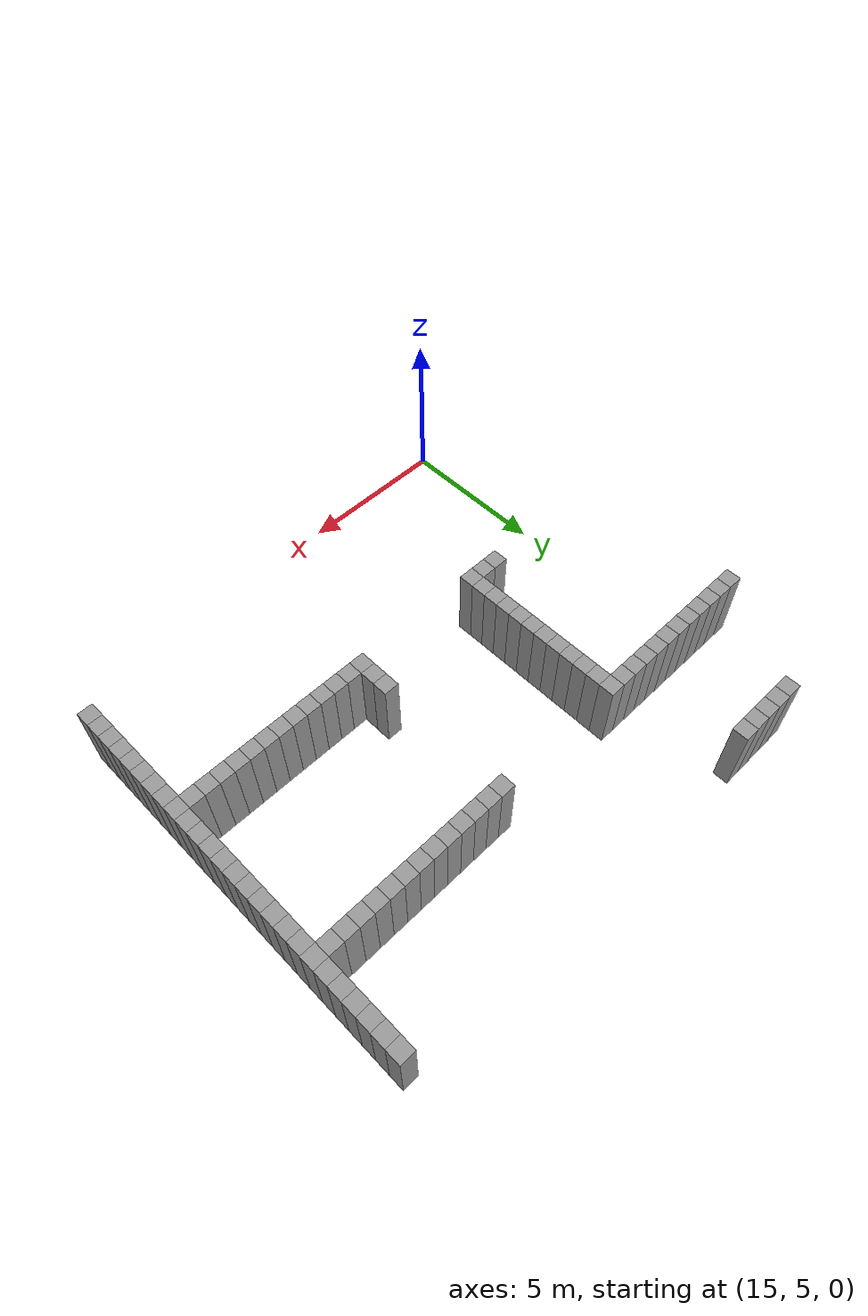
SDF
<sdf version="1.7">
 <model name="image1">
  <pose>-0.375 -1.54 0 0 -0 0</pose>
  <link name="Wall_254">
   <collision name="Wall_254_Collision">
    <geometry><box><size>0.5 0.5 2.5</size></box></geometry>
    <pose>0 0 1.25 0 -0 0</pose>
   </collision>
   <visual name="Wall_254_Visual">
    <pose>0 0 1.25 0 -0 0</pose>
    <geometry><box><size>0.5 0.5 2.5</size></box></geometry>
    <material>
     <script><uri>file://media/materials/scripts/gazebo.material</uri><name>Gazebo/Grey</name></script>
     <ambient>1 1 1 1</ambient>
    </material>
    <meta><layer>0</layer></meta>
   </visual>
   <pose>14.0 18.5 0 0 -0 0</pose>
  </link>
  <link name="Wall_257">
   <collision name="Wall_257_Collision">
    <geometry><box><size>0.5 0.5 2.5</size></box></geometry>
    <pose>0 0 1.25 0 -0 0</pose>
   </collision>
   <visual name="Wall_257_Visual">
    <pose>0 0 1.25 0 -0 0</pose>
    <geometry><box><size>0.5 0.5 2.5</size></box></geometry>
    <material>
     <script><uri>file://media/materials/scripts/gazebo.material</uri><name>Gazebo/Grey</name></script>
     <ambient>1 1 1 1</ambient>
    </material>
    <meta><layer>0</layer></meta>
   </visual>
   <pose>14.5 18.5 0 0 -0 0</pose>
  </link>
  <link name="Wall_260">
   <collision name="Wall_260_Collision">
    <geometry><box><size>0.5 0.5 2.5</size></box></geometry>
    <pose>0 0 1.25 0 -0 0</pose>
   </collision>
   <visual name="Wall_260_Visual">
    <pose>0 0 1.25 0 -0 0</pose>
    <geometry><box><size>0.5 0.5 2.5</size></box></geometry>
    <material>
     <script><uri>file://media/materials/scripts/gazebo.material</uri><name>Gazebo/Grey</name></script>
     <ambient>1 1 1 1</ambient>
    </material>
    <meta><layer>0</layer></meta>
   </visual>
   <pose>15.0 18.5 0 0 -0 0</pose>
  </link>
  <link name="Wall_263">
   <collision name="Wall_263_Collision">
    <geometry><box><size>0.5 0.5 2.5</size></box></geometry>
    <pose>0 0 1.25 0 -0 0</pose>
   </collision>
   <visual name="Wall_263_Visual">
    <pose>0 0 1.25 0 -0 0</pose>
    <geometry><box><size>0.5 0.5 2.5</size></box></geometry>
    <material>
     <script><uri>file://media/materials/scripts/gazebo.material</uri><name>Gazebo/Grey</name></script>
     <ambient>1 1 1 1</ambient>
    </material>
    <meta><layer>0</layer></meta>
   </visual>
   <pose>15.5 18.5 0 0 -0 0</pose>
  </link>
  <link name="Wall_266">
   <collision name="Wall_266_Collision">
    <geometry><box><size>0.5 0.5 2.5</size></box></geometry>
    <pose>0 0 1.25 0 -0 0</pose>
   </collision>
   <visual name="Wall_266_Visual">
    <pose>0 0 1.25 0 -0 0</pose>
    <geometry><box><size>0.5 0.5 2.5</size></box></geometry>
    <material>
     <script><uri>file://media/materials/scripts/gazebo.material</uri><name>Gazebo/Grey</name></script>
     <ambient>1 1 1 1</ambient>
    </material>
    <meta><layer>0</layer></meta>
   </visual>
   <pose>16.0 18.5 0 0 -0 0</pose>
  </link>
  <link name="Wall_267">
   <collision name="Wall_267_Collision">
    <geometry><box><size>0.5 0.5 2.5</size></box></geometry>
    <pose>0 0 1.25 0 -0 0</pose>
   </collision>
   <visual name="Wall_267_Visual">
    <pose>0 0 1.25 0 -0 0</pose>
    <geometry><box><size>0.5 0.5 2.5</size></box></geometry>
    <material>
     <script><uri>file://media/materials/scripts/gazebo.material</uri><name>Gazebo/Grey</name></script>
     <ambient>1 1 1 1</ambient>
    </material>
    <meta><layer>0</layer></meta>
   </visual>
   <pose>16.0 22.0 0 0 -0 0</pose>
  </link>
  <link name="Wall_284">
   <collision name="Wall_284_Collision">
    <geometry><box><size>0.5 0.5 2.5</size></box></geometry>
    <pose>0 0 1.25 0 -0 0</pose>
   </collision>
   <visual name="Wall_284_Visual">
    <pose>0 0 1.25 0 -0 0</pose>
    <geometry><box><size>0.5 0.5 2.5</size></box></geometry>
    <material>
     <script><uri>file://media/materials/scripts/gazebo.material</uri><name>Gazebo/Grey</name></script>
     <ambient>1 1 1 1</ambient>
    </material>
    <meta><layer>0</layer></meta>
   </visual>
   <pose>16.5 18.5 0 0 -0 0</pose>
  </link>
  <link name="Wall_285">
   <collision name="Wall_285_Collision">
    <geometry><box><size>0.5 0.5 2.5</size></box></geometry>
    <pose>0 0 1.25 0 -0 0</pose>
   </collision>
   <visual name="Wall_285_Visual">
    <pose>0 0 1.25 0 -0 0</pose>
    <geometry><box><size>0.5 0.5 2.5</size></box></geometry>
    <material>
     <script><uri>file://media/materials/scripts/gazebo.material</uri><name>Gazebo/Grey</name></script>
     <ambient>1 1 1 1</ambient>
    </material>
    <meta><layer>0</layer></meta>
   </visual>
   <pose>16.5 22.0 0 0 -0 0</pose>
  </link>
  <link name="Wall_288">
   <collision name="Wall_288_Collision">
    <geometry><box><size>0.5 0.5 2.5</size></box></geometry>
    <pose>0 0 1.25 0 -0 0</pose>
   </collision>
   <visual name="Wall_288_Visual">
    <pose>0 0 1.25 0 -0 0</pose>
    <geometry><box><size>0.5 0.5 2.5</size></box></geometry>
    <material>
     <script><uri>file://media/materials/scripts/gazebo.material</uri><name>Gazebo/Grey</name></script>
     <ambient>1 1 1 1</ambient>
    </material>
    <meta><layer>0</layer></meta>
   </visual>
   <pose>17.0 18.5 0 0 -0 0</pose>
  </link>
  <link name="Wall_289">
   <collision name="Wall_289_Collision">
    <geometry><box><size>0.5 0.5 2.5</size></box></geometry>
    <pose>0 0 1.25 0 -0 0</pose>
   </collision>
   <visual name="Wall_289_Visual">
    <pose>0 0 1.25 0 -0 0</pose>
    <geometry><box><size>0.5 0.5 2.5</size></box></geometry>
    <material>
     <script><uri>file://media/materials/scripts/gazebo.material</uri><name>Gazebo/Grey</name></script>
     <ambient>1 1 1 1</ambient>
    </material>
    <meta><layer>0</layer></meta>
   </visual>
   <pose>17.0 22.0 0 0 -0 0</pose>
  </link>
  <link name="Wall_292">
   <collision name="Wall_292_Collision">
    <geometry><box><size>0.5 0.5 2.5</size></box></geometry>
    <pose>0 0 1.25 0 -0 0</pose>
   </collision>
   <visual name="Wall_292_Visual">
    <pose>0 0 1.25 0 -0 0</pose>
    <geometry><box><size>0.5 0.5 2.5</size></box></geometry>
    <material>
     <script><uri>file://media/materials/scripts/gazebo.material</uri><name>Gazebo/Grey</name></script>
     <ambient>1 1 1 1</ambient>
    </material>
    <meta><layer>0</layer></meta>
   </visual>
   <pose>17.5 18.5 0 0 -0 0</pose>
  </link>
  <link name="Wall_293">
   <collision name="Wall_293_Collision">
    <geometry><box><size>0.5 0.5 2.5</size></box></geometry>
    <pose>0 0 1.25 0 -0 0</pose>
   </collision>
   <visual name="Wall_293_Visual">
    <pose>0 0 1.25 0 -0 0</pose>
    <geometry><box><size>0.5 0.5 2.5</size></box></geometry>
    <material>
     <script><uri>file://media/materials/scripts/gazebo.material</uri><name>Gazebo/Grey</name></script>
     <ambient>1 1 1 1</ambient>
    </material>
    <meta><layer>0</layer></meta>
   </visual>
   <pose>17.5 22.0 0 0 -0 0</pose>
  </link>
  <link name="Wall_296">
   <collision name="Wall_296_Collision">
    <geometry><box><size>0.5 0.5 2.5</size></box></geometry>
    <pose>0 0 1.25 0 -0 0</pose>
   </collision>
   <visual name="Wall_296_Visual">
    <pose>0 0 1.25 0 -0 0</pose>
    <geometry><box><size>0.5 0.5 2.5</size></box></geometry>
    <material>
     <script><uri>file://media/materials/scripts/gazebo.material</uri><name>Gazebo/Grey</name></script>
     <ambient>1 1 1 1</ambient>
    </material>
    <meta><layer>0</layer></meta>
   </visual>
   <pose>18.0 18.5 0 0 -0 0</pose>
  </link>
  <link name="Wall_297">
   <collision name="Wall_297_Collision">
    <geometry><box><size>0.5 0.5 2.5</size></box></geometry>
    <pose>0 0 1.25 0 -0 0</pose>
   </collision>
   <visual name="Wall_297_Visual">
    <pose>0 0 1.25 0 -0 0</pose>
    <geometry><box><size>0.5 0.5 2.5</size></box></geometry>
    <material>
     <script><uri>file://media/materials/scripts/gazebo.material</uri><name>Gazebo/Grey</name></script>
     <ambient>1 1 1 1</ambient>
    </material>
    <meta><layer>0</layer></meta>
   </visual>
   <pose>18.0 22.0 0 0 -0 0</pose>
  </link>
  <link name="Wall_318">
   <collision name="Wall_318_Collision">
    <geometry><box><size>0.5 0.5 2.5</size></box></geometry>
    <pose>0 0 1.25 0 -0 0</pose>
   </collision>
   <visual name="Wall_318_Visual">
    <pose>0 0 1.25 0 -0 0</pose>
    <geometry><box><size>0.5 0.5 2.5</size></box></geometry>
    <material>
     <script><uri>file://media/materials/scripts/gazebo.material</uri><name>Gazebo/Grey</name></script>
     <ambient>1 1 1 1</ambient>
    </material>
    <meta><layer>0</layer></meta>
   </visual>
   <pose>18.5 13.0 0 0 -0 0</pose>
  </link>
  <link name="Wall_319">
   <collision name="Wall_319_Collision">
    <geometry><box><size>0.5 0.5 2.5</size></box></geometry>
    <pose>0 0 1.25 0 -0 0</pose>
   </collision>
   <visual name="Wall_319_Visual">
    <pose>0 0 1.25 0 -0 0</pose>
    <geometry><box><size>0.5 0.5 2.5</size></box></geometry>
    <material>
     <script><uri>file://media/materials/scripts/gazebo.material</uri><name>Gazebo/Grey</name></script>
     <ambient>1 1 1 1</ambient>
    </material>
    <meta><layer>0</layer></meta>
   </visual>
   <pose>18.5 18.5 0 0 -0 0</pose>
  </link>
  <link name="Wall_323">
   <collision name="Wall_323_Collision">
    <geometry><box><size>0.5 0.5 2.5</size></box></geometry>
    <pose>0 0 1.25 0 -0 0</pose>
   </collision>
   <visual name="Wall_323_Visual">
    <pose>0 0 1.25 0 -0 0</pose>
    <geometry><box><size>0.5 0.5 2.5</size></box></geometry>
    <material>
     <script><uri>file://media/materials/scripts/gazebo.material</uri><name>Gazebo/Grey</name></script>
     <ambient>1 1 1 1</ambient>
    </material>
    <meta><layer>0</layer></meta>
   </visual>
   <pose>19.0 13.0 0 0 -0 0</pose>
  </link>
  <link name="Wall_324">
   <collision name="Wall_324_Collision">
    <geometry><box><size>0.5 0.5 2.5</size></box></geometry>
    <pose>0 0 1.25 0 -0 0</pose>
   </collision>
   <visual name="Wall_324_Visual">
    <pose>0 0 1.25 0 -0 0</pose>
    <geometry><box><size>0.5 0.5 2.5</size></box></geometry>
    <material>
     <script><uri>file://media/materials/scripts/gazebo.material</uri><name>Gazebo/Grey</name></script>
     <ambient>1 1 1 1</ambient>
    </material>
    <meta><layer>0</layer></meta>
   </visual>
   <pose>19.0 18.5 0 0 -0 0</pose>
  </link>
  <link name="Wall_328">
   <collision name="Wall_328_Collision">
    <geometry><box><size>0.5 0.5 2.5</size></box></geometry>
    <pose>0 0 1.25 0 -0 0</pose>
   </collision>
   <visual name="Wall_328_Visual">
    <pose>0 0 1.25 0 -0 0</pose>
    <geometry><box><size>0.5 0.5 2.5</size></box></geometry>
    <material>
     <script><uri>file://media/materials/scripts/gazebo.material</uri><name>Gazebo/Grey</name></script>
     <ambient>1 1 1 1</ambient>
    </material>
    <meta><layer>0</layer></meta>
   </visual>
   <pose>19.5 13.0 0 0 -0 0</pose>
  </link>
  <link name="Wall_329">
   <collision name="Wall_329_Collision">
    <geometry><box><size>0.5 0.5 2.5</size></box></geometry>
    <pose>0 0 1.25 0 -0 0</pose>
   </collision>
   <visual name="Wall_329_Visual">
    <pose>0 0 1.25 0 -0 0</pose>
    <geometry><box><size>0.5 0.5 2.5</size></box></geometry>
    <material>
     <script><uri>file://media/materials/scripts/gazebo.material</uri><name>Gazebo/Grey</name></script>
     <ambient>1 1 1 1</ambient>
    </material>
    <meta><layer>0</layer></meta>
   </visual>
   <pose>19.5 13.5 0 0 -0 0</pose>
  </link>
  <link name="Wall_330">
   <collision name="Wall_330_Collision">
    <geometry><box><size>0.5 0.5 2.5</size></box></geometry>
    <pose>0 0 1.25 0 -0 0</pose>
   </collision>
   <visual name="Wall_330_Visual">
    <pose>0 0 1.25 0 -0 0</pose>
    <geometry><box><size>0.5 0.5 2.5</size></box></geometry>
    <material>
     <script><uri>file://media/materials/scripts/gazebo.material</uri><name>Gazebo/Grey</name></script>
     <ambient>1 1 1 1</ambient>
    </material>
    <meta><layer>0</layer></meta>
   </visual>
   <pose>19.5 14.0 0 0 -0 0</pose>
  </link>
  <link name="Wall_331">
   <collision name="Wall_331_Collision">
    <geometry><box><size>0.5 0.5 2.5</size></box></geometry>
    <pose>0 0 1.25 0 -0 0</pose>
   </collision>
   <visual name="Wall_331_Visual">
    <pose>0 0 1.25 0 -0 0</pose>
    <geometry><box><size>0.5 0.5 2.5</size></box></geometry>
    <material>
     <script><uri>file://media/materials/scripts/gazebo.material</uri><name>Gazebo/Grey</name></script>
     <ambient>1 1 1 1</ambient>
    </material>
    <meta><layer>0</layer></meta>
   </visual>
   <pose>19.5 14.5 0 0 -0 0</pose>
  </link>
  <link name="Wall_332">
   <collision name="Wall_332_Collision">
    <geometry><box><size>0.5 0.5 2.5</size></box></geometry>
    <pose>0 0 1.25 0 -0 0</pose>
   </collision>
   <visual name="Wall_332_Visual">
    <pose>0 0 1.25 0 -0 0</pose>
    <geometry><box><size>0.5 0.5 2.5</size></box></geometry>
    <material>
     <script><uri>file://media/materials/scripts/gazebo.material</uri><name>Gazebo/Grey</name></script>
     <ambient>1 1 1 1</ambient>
    </material>
    <meta><layer>0</layer></meta>
   </visual>
   <pose>19.5 15.0 0 0 -0 0</pose>
  </link>
  <link name="Wall_333">
   <collision name="Wall_333_Collision">
    <geometry><box><size>0.5 0.5 2.5</size></box></geometry>
    <pose>0 0 1.25 0 -0 0</pose>
   </collision>
   <visual name="Wall_333_Visual">
    <pose>0 0 1.25 0 -0 0</pose>
    <geometry><box><size>0.5 0.5 2.5</size></box></geometry>
    <material>
     <script><uri>file://media/materials/scripts/gazebo.material</uri><name>Gazebo/Grey</name></script>
     <ambient>1 1 1 1</ambient>
    </material>
    <meta><layer>0</layer></meta>
   </visual>
   <pose>19.5 15.5 0 0 -0 0</pose>
  </link>
  <link name="Wall_334">
   <collision name="Wall_334_Collision">
    <geometry><box><size>0.5 0.5 2.5</size></box></geometry>
    <pose>0 0 1.25 0 -0 0</pose>
   </collision>
   <visual name="Wall_334_Visual">
    <pose>0 0 1.25 0 -0 0</pose>
    <geometry><box><size>0.5 0.5 2.5</size></box></geometry>
    <material>
     <script><uri>file://media/materials/scripts/gazebo.material</uri><name>Gazebo/Grey</name></script>
     <ambient>1 1 1 1</ambient>
    </material>
    <meta><layer>0</layer></meta>
   </visual>
   <pose>19.5 16.0 0 0 -0 0</pose>
  </link>
  <link name="Wall_335">
   <collision name="Wall_335_Collision">
    <geometry><box><size>0.5 0.5 2.5</size></box></geometry>
    <pose>0 0 1.25 0 -0 0</pose>
   </collision>
   <visual name="Wall_335_Visual">
    <pose>0 0 1.25 0 -0 0</pose>
    <geometry><box><size>0.5 0.5 2.5</size></box></geometry>
    <material>
     <script><uri>file://media/materials/scripts/gazebo.material</uri><name>Gazebo/Grey</name></script>
     <ambient>1 1 1 1</ambient>
    </material>
    <meta><layer>0</layer></meta>
   </visual>
   <pose>19.5 16.5 0 0 -0 0</pose>
  </link>
  <link name="Wall_336">
   <collision name="Wall_336_Collision">
    <geometry><box><size>0.5 0.5 2.5</size></box></geometry>
    <pose>0 0 1.25 0 -0 0</pose>
   </collision>
   <visual name="Wall_336_Visual">
    <pose>0 0 1.25 0 -0 0</pose>
    <geometry><box><size>0.5 0.5 2.5</size></box></geometry>
    <material>
     <script><uri>file://media/materials/scripts/gazebo.material</uri><name>Gazebo/Grey</name></script>
     <ambient>1 1 1 1</ambient>
    </material>
    <meta><layer>0</layer></meta>
   </visual>
   <pose>19.5 17.0 0 0 -0 0</pose>
  </link>
  <link name="Wall_337">
   <collision name="Wall_337_Collision">
    <geometry><box><size>0.5 0.5 2.5</size></box></geometry>
    <pose>0 0 1.25 0 -0 0</pose>
   </collision>
   <visual name="Wall_337_Visual">
    <pose>0 0 1.25 0 -0 0</pose>
    <geometry><box><size>0.5 0.5 2.5</size></box></geometry>
    <material>
     <script><uri>file://media/materials/scripts/gazebo.material</uri><name>Gazebo/Grey</name></script>
     <ambient>1 1 1 1</ambient>
    </material>
    <meta><layer>0</layer></meta>
   </visual>
   <pose>19.5 17.5 0 0 -0 0</pose>
  </link>
  <link name="Wall_338">
   <collision name="Wall_338_Collision">
    <geometry><box><size>0.5 0.5 2.5</size></box></geometry>
    <pose>0 0 1.25 0 -0 0</pose>
   </collision>
   <visual name="Wall_338_Visual">
    <pose>0 0 1.25 0 -0 0</pose>
    <geometry><box><size>0.5 0.5 2.5</size></box></geometry>
    <material>
     <script><uri>file://media/materials/scripts/gazebo.material</uri><name>Gazebo/Grey</name></script>
     <ambient>1 1 1 1</ambient>
    </material>
    <meta><layer>0</layer></meta>
   </visual>
   <pose>19.5 18.0 0 0 -0 0</pose>
  </link>
  <link name="Wall_339">
   <collision name="Wall_339_Collision">
    <geometry><box><size>0.5 0.5 2.5</size></box></geometry>
    <pose>0 0 1.25 0 -0 0</pose>
   </collision>
   <visual name="Wall_339_Visual">
    <pose>0 0 1.25 0 -0 0</pose>
    <geometry><box><size>0.5 0.5 2.5</size></box></geometry>
    <material>
     <script><uri>file://media/materials/scripts/gazebo.material</uri><name>Gazebo/Grey</name></script>
     <ambient>1 1 1 1</ambient>
    </material>
    <meta><layer>0</layer></meta>
   </visual>
   <pose>19.5 18.5 0 0 -0 0</pose>
  </link>
  <link name="Wall_364">
   <collision name="Wall_364_Collision">
    <geometry><box><size>0.5 0.5 2.5</size></box></geometry>
    <pose>0 0 1.25 0 -0 0</pose>
   </collision>
   <visual name="Wall_364_Visual">
    <pose>0 0 1.25 0 -0 0</pose>
    <geometry><box><size>0.5 0.5 2.5</size></box></geometry>
    <material>
     <script><uri>file://media/materials/scripts/gazebo.material</uri><name>Gazebo/Grey</name></script>
     <ambient>1 1 1 1</ambient>
    </material>
    <meta><layer>0</layer></meta>
   </visual>
   <pose>24.0 13.0 0 0 -0 0</pose>
  </link>
  <link name="Wall_365">
   <collision name="Wall_365_Collision">
    <geometry><box><size>0.5 0.5 2.5</size></box></geometry>
    <pose>0 0 1.25 0 -0 0</pose>
   </collision>
   <visual name="Wall_365_Visual">
    <pose>0 0 1.25 0 -0 0</pose>
    <geometry><box><size>0.5 0.5 2.5</size></box></geometry>
    <material>
     <script><uri>file://media/materials/scripts/gazebo.material</uri><name>Gazebo/Grey</name></script>
     <ambient>1 1 1 1</ambient>
    </material>
    <meta><layer>0</layer></meta>
   </visual>
   <pose>24.0 13.5 0 0 -0 0</pose>
  </link>
  <link name="Wall_366">
   <collision name="Wall_366_Collision">
    <geometry><box><size>0.5 0.5 2.5</size></box></geometry>
    <pose>0 0 1.25 0 -0 0</pose>
   </collision>
   <visual name="Wall_366_Visual">
    <pose>0 0 1.25 0 -0 0</pose>
    <geometry><box><size>0.5 0.5 2.5</size></box></geometry>
    <material>
     <script><uri>file://media/materials/scripts/gazebo.material</uri><name>Gazebo/Grey</name></script>
     <ambient>1 1 1 1</ambient>
    </material>
    <meta><layer>0</layer></meta>
   </visual>
   <pose>24.0 14.0 0 0 -0 0</pose>
  </link>
  <link name="Wall_367">
   <collision name="Wall_367_Collision">
    <geometry><box><size>0.5 0.5 2.5</size></box></geometry>
    <pose>0 0 1.25 0 -0 0</pose>
   </collision>
   <visual name="Wall_367_Visual">
    <pose>0 0 1.25 0 -0 0</pose>
    <geometry><box><size>0.5 0.5 2.5</size></box></geometry>
    <material>
     <script><uri>file://media/materials/scripts/gazebo.material</uri><name>Gazebo/Grey</name></script>
     <ambient>1 1 1 1</ambient>
    </material>
    <meta><layer>0</layer></meta>
   </visual>
   <pose>24.0 18.5 0 0 -0 0</pose>
  </link>
  <link name="Wall_372">
   <collision name="Wall_372_Collision">
    <geometry><box><size>0.5 0.5 2.5</size></box></geometry>
    <pose>0 0 1.25 0 -0 0</pose>
   </collision>
   <visual name="Wall_372_Visual">
    <pose>0 0 1.25 0 -0 0</pose>
    <geometry><box><size>0.5 0.5 2.5</size></box></geometry>
    <material>
     <script><uri>file://media/materials/scripts/gazebo.material</uri><name>Gazebo/Grey</name></script>
     <ambient>1 1 1 1</ambient>
    </material>
    <meta><layer>0</layer></meta>
   </visual>
   <pose>24.5 13.0 0 0 -0 0</pose>
  </link>
  <link name="Wall_373">
   <collision name="Wall_373_Collision">
    <geometry><box><size>0.5 0.5 2.5</size></box></geometry>
    <pose>0 0 1.25 0 -0 0</pose>
   </collision>
   <visual name="Wall_373_Visual">
    <pose>0 0 1.25 0 -0 0</pose>
    <geometry><box><size>0.5 0.5 2.5</size></box></geometry>
    <material>
     <script><uri>file://media/materials/scripts/gazebo.material</uri><name>Gazebo/Grey</name></script>
     <ambient>1 1 1 1</ambient>
    </material>
    <meta><layer>0</layer></meta>
   </visual>
   <pose>24.5 18.5 0 0 -0 0</pose>
  </link>
  <link name="Wall_392">
   <collision name="Wall_392_Collision">
    <geometry><box><size>0.5 0.5 2.5</size></box></geometry>
    <pose>0 0 1.25 0 -0 0</pose>
   </collision>
   <visual name="Wall_392_Visual">
    <pose>0 0 1.25 0 -0 0</pose>
    <geometry><box><size>0.5 0.5 2.5</size></box></geometry>
    <material>
     <script><uri>file://media/materials/scripts/gazebo.material</uri><name>Gazebo/Grey</name></script>
     <ambient>1 1 1 1</ambient>
    </material>
    <meta><layer>0</layer></meta>
   </visual>
   <pose>25.0 13.0 0 0 -0 0</pose>
  </link>
  <link name="Wall_393">
   <collision name="Wall_393_Collision">
    <geometry><box><size>0.5 0.5 2.5</size></box></geometry>
    <pose>0 0 1.25 0 -0 0</pose>
   </collision>
   <visual name="Wall_393_Visual">
    <pose>0 0 1.25 0 -0 0</pose>
    <geometry><box><size>0.5 0.5 2.5</size></box></geometry>
    <material>
     <script><uri>file://media/materials/scripts/gazebo.material</uri><name>Gazebo/Grey</name></script>
     <ambient>1 1 1 1</ambient>
    </material>
    <meta><layer>0</layer></meta>
   </visual>
   <pose>25.0 18.5 0 0 -0 0</pose>
  </link>
  <link name="Wall_398">
   <collision name="Wall_398_Collision">
    <geometry><box><size>0.5 0.5 2.5</size></box></geometry>
    <pose>0 0 1.25 0 -0 0</pose>
   </collision>
   <visual name="Wall_398_Visual">
    <pose>0 0 1.25 0 -0 0</pose>
    <geometry><box><size>0.5 0.5 2.5</size></box></geometry>
    <material>
     <script><uri>file://media/materials/scripts/gazebo.material</uri><name>Gazebo/Grey</name></script>
     <ambient>1 1 1 1</ambient>
    </material>
    <meta><layer>0</layer></meta>
   </visual>
   <pose>25.5 13.0 0 0 -0 0</pose>
  </link>
  <link name="Wall_399">
   <collision name="Wall_399_Collision">
    <geometry><box><size>0.5 0.5 2.5</size></box></geometry>
    <pose>0 0 1.25 0 -0 0</pose>
   </collision>
   <visual name="Wall_399_Visual">
    <pose>0 0 1.25 0 -0 0</pose>
    <geometry><box><size>0.5 0.5 2.5</size></box></geometry>
    <material>
     <script><uri>file://media/materials/scripts/gazebo.material</uri><name>Gazebo/Grey</name></script>
     <ambient>1 1 1 1</ambient>
    </material>
    <meta><layer>0</layer></meta>
   </visual>
   <pose>25.5 18.5 0 0 -0 0</pose>
  </link>
  <link name="Wall_404">
   <collision name="Wall_404_Collision">
    <geometry><box><size>0.5 0.5 2.5</size></box></geometry>
    <pose>0 0 1.25 0 -0 0</pose>
   </collision>
   <visual name="Wall_404_Visual">
    <pose>0 0 1.25 0 -0 0</pose>
    <geometry><box><size>0.5 0.5 2.5</size></box></geometry>
    <material>
     <script><uri>file://media/materials/scripts/gazebo.material</uri><name>Gazebo/Grey</name></script>
     <ambient>1 1 1 1</ambient>
    </material>
    <meta><layer>0</layer></meta>
   </visual>
   <pose>26.0 13.0 0 0 -0 0</pose>
  </link>
  <link name="Wall_405">
   <collision name="Wall_405_Collision">
    <geometry><box><size>0.5 0.5 2.5</size></box></geometry>
    <pose>0 0 1.25 0 -0 0</pose>
   </collision>
   <visual name="Wall_405_Visual">
    <pose>0 0 1.25 0 -0 0</pose>
    <geometry><box><size>0.5 0.5 2.5</size></box></geometry>
    <material>
     <script><uri>file://media/materials/scripts/gazebo.material</uri><name>Gazebo/Grey</name></script>
     <ambient>1 1 1 1</ambient>
    </material>
    <meta><layer>0</layer></meta>
   </visual>
   <pose>26.0 18.5 0 0 -0 0</pose>
  </link>
  <link name="Wall_409">
   <collision name="Wall_409_Collision">
    <geometry><box><size>0.5 0.5 2.5</size></box></geometry>
    <pose>0 0 1.25 0 -0 0</pose>
   </collision>
   <visual name="Wall_409_Visual">
    <pose>0 0 1.25 0 -0 0</pose>
    <geometry><box><size>0.5 0.5 2.5</size></box></geometry>
    <material>
     <script><uri>file://media/materials/scripts/gazebo.material</uri><name>Gazebo/Grey</name></script>
     <ambient>1 1 1 1</ambient>
    </material>
    <meta><layer>0</layer></meta>
   </visual>
   <pose>26.5 13.0 0 0 -0 0</pose>
  </link>
  <link name="Wall_410">
   <collision name="Wall_410_Collision">
    <geometry><box><size>0.5 0.5 2.5</size></box></geometry>
    <pose>0 0 1.25 0 -0 0</pose>
   </collision>
   <visual name="Wall_410_Visual">
    <pose>0 0 1.25 0 -0 0</pose>
    <geometry><box><size>0.5 0.5 2.5</size></box></geometry>
    <material>
     <script><uri>file://media/materials/scripts/gazebo.material</uri><name>Gazebo/Grey</name></script>
     <ambient>1 1 1 1</ambient>
    </material>
    <meta><layer>0</layer></meta>
   </visual>
   <pose>26.5 18.5 0 0 -0 0</pose>
  </link>
  <link name="Wall_414">
   <collision name="Wall_414_Collision">
    <geometry><box><size>0.5 0.5 2.5</size></box></geometry>
    <pose>0 0 1.25 0 -0 0</pose>
   </collision>
   <visual name="Wall_414_Visual">
    <pose>0 0 1.25 0 -0 0</pose>
    <geometry><box><size>0.5 0.5 2.5</size></box></geometry>
    <material>
     <script><uri>file://media/materials/scripts/gazebo.material</uri><name>Gazebo/Grey</name></script>
     <ambient>1 1 1 1</ambient>
    </material>
    <meta><layer>0</layer></meta>
   </visual>
   <pose>27.0 13.0 0 0 -0 0</pose>
  </link>
  <link name="Wall_415">
   <collision name="Wall_415_Collision">
    <geometry><box><size>0.5 0.5 2.5</size></box></geometry>
    <pose>0 0 1.25 0 -0 0</pose>
   </collision>
   <visual name="Wall_415_Visual">
    <pose>0 0 1.25 0 -0 0</pose>
    <geometry><box><size>0.5 0.5 2.5</size></box></geometry>
    <material>
     <script><uri>file://media/materials/scripts/gazebo.material</uri><name>Gazebo/Grey</name></script>
     <ambient>1 1 1 1</ambient>
    </material>
    <meta><layer>0</layer></meta>
   </visual>
   <pose>27.0 18.5 0 0 -0 0</pose>
  </link>
  <link name="Wall_419">
   <collision name="Wall_419_Collision">
    <geometry><box><size>0.5 0.5 2.5</size></box></geometry>
    <pose>0 0 1.25 0 -0 0</pose>
   </collision>
   <visual name="Wall_419_Visual">
    <pose>0 0 1.25 0 -0 0</pose>
    <geometry><box><size>0.5 0.5 2.5</size></box></geometry>
    <material>
     <script><uri>file://media/materials/scripts/gazebo.material</uri><name>Gazebo/Grey</name></script>
     <ambient>1 1 1 1</ambient>
    </material>
    <meta><layer>0</layer></meta>
   </visual>
   <pose>27.5 13.0 0 0 -0 0</pose>
  </link>
  <link name="Wall_420">
   <collision name="Wall_420_Collision">
    <geometry><box><size>0.5 0.5 2.5</size></box></geometry>
    <pose>0 0 1.25 0 -0 0</pose>
   </collision>
   <visual name="Wall_420_Visual">
    <pose>0 0 1.25 0 -0 0</pose>
    <geometry><box><size>0.5 0.5 2.5</size></box></geometry>
    <material>
     <script><uri>file://media/materials/scripts/gazebo.material</uri><name>Gazebo/Grey</name></script>
     <ambient>1 1 1 1</ambient>
    </material>
    <meta><layer>0</layer></meta>
   </visual>
   <pose>27.5 18.5 0 0 -0 0</pose>
  </link>
  <link name="Wall_424">
   <collision name="Wall_424_Collision">
    <geometry><box><size>0.5 0.5 2.5</size></box></geometry>
    <pose>0 0 1.25 0 -0 0</pose>
   </collision>
   <visual name="Wall_424_Visual">
    <pose>0 0 1.25 0 -0 0</pose>
    <geometry><box><size>0.5 0.5 2.5</size></box></geometry>
    <material>
     <script><uri>file://media/materials/scripts/gazebo.material</uri><name>Gazebo/Grey</name></script>
     <ambient>1 1 1 1</ambient>
    </material>
    <meta><layer>0</layer></meta>
   </visual>
   <pose>28.0 13.0 0 0 -0 0</pose>
  </link>
  <link name="Wall_425">
   <collision name="Wall_425_Collision">
    <geometry><box><size>0.5 0.5 2.5</size></box></geometry>
    <pose>0 0 1.25 0 -0 0</pose>
   </collision>
   <visual name="Wall_425_Visual">
    <pose>0 0 1.25 0 -0 0</pose>
    <geometry><box><size>0.5 0.5 2.5</size></box></geometry>
    <material>
     <script><uri>file://media/materials/scripts/gazebo.material</uri><name>Gazebo/Grey</name></script>
     <ambient>1 1 1 1</ambient>
    </material>
    <meta><layer>0</layer></meta>
   </visual>
   <pose>28.0 18.5 0 0 -0 0</pose>
  </link>
  <link name="Wall_429">
   <collision name="Wall_429_Collision">
    <geometry><box><size>0.5 0.5 2.5</size></box></geometry>
    <pose>0 0 1.25 0 -0 0</pose>
   </collision>
   <visual name="Wall_429_Visual">
    <pose>0 0 1.25 0 -0 0</pose>
    <geometry><box><size>0.5 0.5 2.5</size></box></geometry>
    <material>
     <script><uri>file://media/materials/scripts/gazebo.material</uri><name>Gazebo/Grey</name></script>
     <ambient>1 1 1 1</ambient>
    </material>
    <meta><layer>0</layer></meta>
   </visual>
   <pose>28.5 13.0 0 0 -0 0</pose>
  </link>
  <link name="Wall_430">
   <collision name="Wall_430_Collision">
    <geometry><box><size>0.5 0.5 2.5</size></box></geometry>
    <pose>0 0 1.25 0 -0 0</pose>
   </collision>
   <visual name="Wall_430_Visual">
    <pose>0 0 1.25 0 -0 0</pose>
    <geometry><box><size>0.5 0.5 2.5</size></box></geometry>
    <material>
     <script><uri>file://media/materials/scripts/gazebo.material</uri><name>Gazebo/Grey</name></script>
     <ambient>1 1 1 1</ambient>
    </material>
    <meta><layer>0</layer></meta>
   </visual>
   <pose>28.5 18.5 0 0 -0 0</pose>
  </link>
  <link name="Wall_434">
   <collision name="Wall_434_Collision">
    <geometry><box><size>0.5 0.5 2.5</size></box></geometry>
    <pose>0 0 1.25 0 -0 0</pose>
   </collision>
   <visual name="Wall_434_Visual">
    <pose>0 0 1.25 0 -0 0</pose>
    <geometry><box><size>0.5 0.5 2.5</size></box></geometry>
    <material>
     <script><uri>file://media/materials/scripts/gazebo.material</uri><name>Gazebo/Grey</name></script>
     <ambient>1 1 1 1</ambient>
    </material>
    <meta><layer>0</layer></meta>
   </visual>
   <pose>29.0 13.0 0 0 -0 0</pose>
  </link>
  <link name="Wall_435">
   <collision name="Wall_435_Collision">
    <geometry><box><size>0.5 0.5 2.5</size></box></geometry>
    <pose>0 0 1.25 0 -0 0</pose>
   </collision>
   <visual name="Wall_435_Visual">
    <pose>0 0 1.25 0 -0 0</pose>
    <geometry><box><size>0.5 0.5 2.5</size></box></geometry>
    <material>
     <script><uri>file://media/materials/scripts/gazebo.material</uri><name>Gazebo/Grey</name></script>
     <ambient>1 1 1 1</ambient>
    </material>
    <meta><layer>0</layer></meta>
   </visual>
   <pose>29.0 18.5 0 0 -0 0</pose>
  </link>
  <link name="Wall_439">
   <collision name="Wall_439_Collision">
    <geometry><box><size>0.5 0.5 2.5</size></box></geometry>
    <pose>0 0 1.25 0 -0 0</pose>
   </collision>
   <visual name="Wall_439_Visual">
    <pose>0 0 1.25 0 -0 0</pose>
    <geometry><box><size>0.5 0.5 2.5</size></box></geometry>
    <material>
     <script><uri>file://media/materials/scripts/gazebo.material</uri><name>Gazebo/Grey</name></script>
     <ambient>1 1 1 1</ambient>
    </material>
    <meta><layer>0</layer></meta>
   </visual>
   <pose>29.5 13.0 0 0 -0 0</pose>
  </link>
  <link name="Wall_440">
   <collision name="Wall_440_Collision">
    <geometry><box><size>0.5 0.5 2.5</size></box></geometry>
    <pose>0 0 1.25 0 -0 0</pose>
   </collision>
   <visual name="Wall_440_Visual">
    <pose>0 0 1.25 0 -0 0</pose>
    <geometry><box><size>0.5 0.5 2.5</size></box></geometry>
    <material>
     <script><uri>file://media/materials/scripts/gazebo.material</uri><name>Gazebo/Grey</name></script>
     <ambient>1 1 1 1</ambient>
    </material>
    <meta><layer>0</layer></meta>
   </visual>
   <pose>29.5 18.5 0 0 -0 0</pose>
  </link>
  <link name="Wall_444">
   <collision name="Wall_444_Collision">
    <geometry><box><size>0.5 0.5 2.5</size></box></geometry>
    <pose>0 0 1.25 0 -0 0</pose>
   </collision>
   <visual name="Wall_444_Visual">
    <pose>0 0 1.25 0 -0 0</pose>
    <geometry><box><size>0.5 0.5 2.5</size></box></geometry>
    <material>
     <script><uri>file://media/materials/scripts/gazebo.material</uri><name>Gazebo/Grey</name></script>
     <ambient>1 1 1 1</ambient>
    </material>
    <meta><layer>0</layer></meta>
   </visual>
   <pose>30.0 13.0 0 0 -0 0</pose>
  </link>
  <link name="Wall_445">
   <collision name="Wall_445_Collision">
    <geometry><box><size>0.5 0.5 2.5</size></box></geometry>
    <pose>0 0 1.25 0 -0 0</pose>
   </collision>
   <visual name="Wall_445_Visual">
    <pose>0 0 1.25 0 -0 0</pose>
    <geometry><box><size>0.5 0.5 2.5</size></box></geometry>
    <material>
     <script><uri>file://media/materials/scripts/gazebo.material</uri><name>Gazebo/Grey</name></script>
     <ambient>1 1 1 1</ambient>
    </material>
    <meta><layer>0</layer></meta>
   </visual>
   <pose>30.0 18.5 0 0 -0 0</pose>
  </link>
  <link name="Wall_466">
   <collision name="Wall_466_Collision">
    <geometry><box><size>0.5 0.5 2.5</size></box></geometry>
    <pose>0 0 1.25 0 -0 0</pose>
   </collision>
   <visual name="Wall_466_Visual">
    <pose>0 0 1.25 0 -0 0</pose>
    <geometry><box><size>0.5 0.5 2.5</size></box></geometry>
    <material>
     <script><uri>file://media/materials/scripts/gazebo.material</uri><name>Gazebo/Grey</name></script>
     <ambient>1 1 1 1</ambient>
    </material>
    <meta><layer>0</layer></meta>
   </visual>
   <pose>30.5 9.0 0 0 -0 0</pose>
  </link>
  <link name="Wall_467">
   <collision name="Wall_467_Collision">
    <geometry><box><size>0.5 0.5 2.5</size></box></geometry>
    <pose>0 0 1.25 0 -0 0</pose>
   </collision>
   <visual name="Wall_467_Visual">
    <pose>0 0 1.25 0 -0 0</pose>
    <geometry><box><size>0.5 0.5 2.5</size></box></geometry>
    <material>
     <script><uri>file://media/materials/scripts/gazebo.material</uri><name>Gazebo/Grey</name></script>
     <ambient>1 1 1 1</ambient>
    </material>
    <meta><layer>0</layer></meta>
   </visual>
   <pose>30.5 9.5 0 0 -0 0</pose>
  </link>
  <link name="Wall_468">
   <collision name="Wall_468_Collision">
    <geometry><box><size>0.5 0.5 2.5</size></box></geometry>
    <pose>0 0 1.25 0 -0 0</pose>
   </collision>
   <visual name="Wall_468_Visual">
    <pose>0 0 1.25 0 -0 0</pose>
    <geometry><box><size>0.5 0.5 2.5</size></box></geometry>
    <material>
     <script><uri>file://media/materials/scripts/gazebo.material</uri><name>Gazebo/Grey</name></script>
     <ambient>1 1 1 1</ambient>
    </material>
    <meta><layer>0</layer></meta>
   </visual>
   <pose>30.5 10.0 0 0 -0 0</pose>
  </link>
  <link name="Wall_469">
   <collision name="Wall_469_Collision">
    <geometry><box><size>0.5 0.5 2.5</size></box></geometry>
    <pose>0 0 1.25 0 -0 0</pose>
   </collision>
   <visual name="Wall_469_Visual">
    <pose>0 0 1.25 0 -0 0</pose>
    <geometry><box><size>0.5 0.5 2.5</size></box></geometry>
    <material>
     <script><uri>file://media/materials/scripts/gazebo.material</uri><name>Gazebo/Grey</name></script>
     <ambient>1 1 1 1</ambient>
    </material>
    <meta><layer>0</layer></meta>
   </visual>
   <pose>30.5 10.5 0 0 -0 0</pose>
  </link>
  <link name="Wall_470">
   <collision name="Wall_470_Collision">
    <geometry><box><size>0.5 0.5 2.5</size></box></geometry>
    <pose>0 0 1.25 0 -0 0</pose>
   </collision>
   <visual name="Wall_470_Visual">
    <pose>0 0 1.25 0 -0 0</pose>
    <geometry><box><size>0.5 0.5 2.5</size></box></geometry>
    <material>
     <script><uri>file://media/materials/scripts/gazebo.material</uri><name>Gazebo/Grey</name></script>
     <ambient>1 1 1 1</ambient>
    </material>
    <meta><layer>0</layer></meta>
   </visual>
   <pose>30.5 11.0 0 0 -0 0</pose>
  </link>
  <link name="Wall_471">
   <collision name="Wall_471_Collision">
    <geometry><box><size>0.5 0.5 2.5</size></box></geometry>
    <pose>0 0 1.25 0 -0 0</pose>
   </collision>
   <visual name="Wall_471_Visual">
    <pose>0 0 1.25 0 -0 0</pose>
    <geometry><box><size>0.5 0.5 2.5</size></box></geometry>
    <material>
     <script><uri>file://media/materials/scripts/gazebo.material</uri><name>Gazebo/Grey</name></script>
     <ambient>1 1 1 1</ambient>
    </material>
    <meta><layer>0</layer></meta>
   </visual>
   <pose>30.5 11.5 0 0 -0 0</pose>
  </link>
  <link name="Wall_472">
   <collision name="Wall_472_Collision">
    <geometry><box><size>0.5 0.5 2.5</size></box></geometry>
    <pose>0 0 1.25 0 -0 0</pose>
   </collision>
   <visual name="Wall_472_Visual">
    <pose>0 0 1.25 0 -0 0</pose>
    <geometry><box><size>0.5 0.5 2.5</size></box></geometry>
    <material>
     <script><uri>file://media/materials/scripts/gazebo.material</uri><name>Gazebo/Grey</name></script>
     <ambient>1 1 1 1</ambient>
    </material>
    <meta><layer>0</layer></meta>
   </visual>
   <pose>30.5 12.0 0 0 -0 0</pose>
  </link>
  <link name="Wall_473">
   <collision name="Wall_473_Collision">
    <geometry><box><size>0.5 0.5 2.5</size></box></geometry>
    <pose>0 0 1.25 0 -0 0</pose>
   </collision>
   <visual name="Wall_473_Visual">
    <pose>0 0 1.25 0 -0 0</pose>
    <geometry><box><size>0.5 0.5 2.5</size></box></geometry>
    <material>
     <script><uri>file://media/materials/scripts/gazebo.material</uri><name>Gazebo/Grey</name></script>
     <ambient>1 1 1 1</ambient>
    </material>
    <meta><layer>0</layer></meta>
   </visual>
   <pose>30.5 12.5 0 0 -0 0</pose>
  </link>
  <link name="Wall_474">
   <collision name="Wall_474_Collision">
    <geometry><box><size>0.5 0.5 2.5</size></box></geometry>
    <pose>0 0 1.25 0 -0 0</pose>
   </collision>
   <visual name="Wall_474_Visual">
    <pose>0 0 1.25 0 -0 0</pose>
    <geometry><box><size>0.5 0.5 2.5</size></box></geometry>
    <material>
     <script><uri>file://media/materials/scripts/gazebo.material</uri><name>Gazebo/Grey</name></script>
     <ambient>1 1 1 1</ambient>
    </material>
    <meta><layer>0</layer></meta>
   </visual>
   <pose>30.5 13.0 0 0 -0 0</pose>
  </link>
  <link name="Wall_475">
   <collision name="Wall_475_Collision">
    <geometry><box><size>0.5 0.5 2.5</size></box></geometry>
    <pose>0 0 1.25 0 -0 0</pose>
   </collision>
   <visual name="Wall_475_Visual">
    <pose>0 0 1.25 0 -0 0</pose>
    <geometry><box><size>0.5 0.5 2.5</size></box></geometry>
    <material>
     <script><uri>file://media/materials/scripts/gazebo.material</uri><name>Gazebo/Grey</name></script>
     <ambient>1 1 1 1</ambient>
    </material>
    <meta><layer>0</layer></meta>
   </visual>
   <pose>30.5 13.5 0 0 -0 0</pose>
  </link>
  <link name="Wall_476">
   <collision name="Wall_476_Collision">
    <geometry><box><size>0.5 0.5 2.5</size></box></geometry>
    <pose>0 0 1.25 0 -0 0</pose>
   </collision>
   <visual name="Wall_476_Visual">
    <pose>0 0 1.25 0 -0 0</pose>
    <geometry><box><size>0.5 0.5 2.5</size></box></geometry>
    <material>
     <script><uri>file://media/materials/scripts/gazebo.material</uri><name>Gazebo/Grey</name></script>
     <ambient>1 1 1 1</ambient>
    </material>
    <meta><layer>0</layer></meta>
   </visual>
   <pose>30.5 14.0 0 0 -0 0</pose>
  </link>
  <link name="Wall_477">
   <collision name="Wall_477_Collision">
    <geometry><box><size>0.5 0.5 2.5</size></box></geometry>
    <pose>0 0 1.25 0 -0 0</pose>
   </collision>
   <visual name="Wall_477_Visual">
    <pose>0 0 1.25 0 -0 0</pose>
    <geometry><box><size>0.5 0.5 2.5</size></box></geometry>
    <material>
     <script><uri>file://media/materials/scripts/gazebo.material</uri><name>Gazebo/Grey</name></script>
     <ambient>1 1 1 1</ambient>
    </material>
    <meta><layer>0</layer></meta>
   </visual>
   <pose>30.5 14.5 0 0 -0 0</pose>
  </link>
  <link name="Wall_478">
   <collision name="Wall_478_Collision">
    <geometry><box><size>0.5 0.5 2.5</size></box></geometry>
    <pose>0 0 1.25 0 -0 0</pose>
   </collision>
   <visual name="Wall_478_Visual">
    <pose>0 0 1.25 0 -0 0</pose>
    <geometry><box><size>0.5 0.5 2.5</size></box></geometry>
    <material>
     <script><uri>file://media/materials/scripts/gazebo.material</uri><name>Gazebo/Grey</name></script>
     <ambient>1 1 1 1</ambient>
    </material>
    <meta><layer>0</layer></meta>
   </visual>
   <pose>30.5 15.0 0 0 -0 0</pose>
  </link>
  <link name="Wall_479">
   <collision name="Wall_479_Collision">
    <geometry><box><size>0.5 0.5 2.5</size></box></geometry>
    <pose>0 0 1.25 0 -0 0</pose>
   </collision>
   <visual name="Wall_479_Visual">
    <pose>0 0 1.25 0 -0 0</pose>
    <geometry><box><size>0.5 0.5 2.5</size></box></geometry>
    <material>
     <script><uri>file://media/materials/scripts/gazebo.material</uri><name>Gazebo/Grey</name></script>
     <ambient>1 1 1 1</ambient>
    </material>
    <meta><layer>0</layer></meta>
   </visual>
   <pose>30.5 15.5 0 0 -0 0</pose>
  </link>
  <link name="Wall_480">
   <collision name="Wall_480_Collision">
    <geometry><box><size>0.5 0.5 2.5</size></box></geometry>
    <pose>0 0 1.25 0 -0 0</pose>
   </collision>
   <visual name="Wall_480_Visual">
    <pose>0 0 1.25 0 -0 0</pose>
    <geometry><box><size>0.5 0.5 2.5</size></box></geometry>
    <material>
     <script><uri>file://media/materials/scripts/gazebo.material</uri><name>Gazebo/Grey</name></script>
     <ambient>1 1 1 1</ambient>
    </material>
    <meta><layer>0</layer></meta>
   </visual>
   <pose>30.5 16.0 0 0 -0 0</pose>
  </link>
  <link name="Wall_481">
   <collision name="Wall_481_Collision">
    <geometry><box><size>0.5 0.5 2.5</size></box></geometry>
    <pose>0 0 1.25 0 -0 0</pose>
   </collision>
   <visual name="Wall_481_Visual">
    <pose>0 0 1.25 0 -0 0</pose>
    <geometry><box><size>0.5 0.5 2.5</size></box></geometry>
    <material>
     <script><uri>file://media/materials/scripts/gazebo.material</uri><name>Gazebo/Grey</name></script>
     <ambient>1 1 1 1</ambient>
    </material>
    <meta><layer>0</layer></meta>
   </visual>
   <pose>30.5 16.5 0 0 -0 0</pose>
  </link>
  <link name="Wall_482">
   <collision name="Wall_482_Collision">
    <geometry><box><size>0.5 0.5 2.5</size></box></geometry>
    <pose>0 0 1.25 0 -0 0</pose>
   </collision>
   <visual name="Wall_482_Visual">
    <pose>0 0 1.25 0 -0 0</pose>
    <geometry><box><size>0.5 0.5 2.5</size></box></geometry>
    <material>
     <script><uri>file://media/materials/scripts/gazebo.material</uri><name>Gazebo/Grey</name></script>
     <ambient>1 1 1 1</ambient>
    </material>
    <meta><layer>0</layer></meta>
   </visual>
   <pose>30.5 17.0 0 0 -0 0</pose>
  </link>
  <link name="Wall_483">
   <collision name="Wall_483_Collision">
    <geometry><box><size>0.5 0.5 2.5</size></box></geometry>
    <pose>0 0 1.25 0 -0 0</pose>
   </collision>
   <visual name="Wall_483_Visual">
    <pose>0 0 1.25 0 -0 0</pose>
    <geometry><box><size>0.5 0.5 2.5</size></box></geometry>
    <material>
     <script><uri>file://media/materials/scripts/gazebo.material</uri><name>Gazebo/Grey</name></script>
     <ambient>1 1 1 1</ambient>
    </material>
    <meta><layer>0</layer></meta>
   </visual>
   <pose>30.5 17.5 0 0 -0 0</pose>
  </link>
  <link name="Wall_484">
   <collision name="Wall_484_Collision">
    <geometry><box><size>0.5 0.5 2.5</size></box></geometry>
    <pose>0 0 1.25 0 -0 0</pose>
   </collision>
   <visual name="Wall_484_Visual">
    <pose>0 0 1.25 0 -0 0</pose>
    <geometry><box><size>0.5 0.5 2.5</size></box></geometry>
    <material>
     <script><uri>file://media/materials/scripts/gazebo.material</uri><name>Gazebo/Grey</name></script>
     <ambient>1 1 1 1</ambient>
    </material>
    <meta><layer>0</layer></meta>
   </visual>
   <pose>30.5 18.0 0 0 -0 0</pose>
  </link>
  <link name="Wall_485">
   <collision name="Wall_485_Collision">
    <geometry><box><size>0.5 0.5 2.5</size></box></geometry>
    <pose>0 0 1.25 0 -0 0</pose>
   </collision>
   <visual name="Wall_485_Visual">
    <pose>0 0 1.25 0 -0 0</pose>
    <geometry><box><size>0.5 0.5 2.5</size></box></geometry>
    <material>
     <script><uri>file://media/materials/scripts/gazebo.material</uri><name>Gazebo/Grey</name></script>
     <ambient>1 1 1 1</ambient>
    </material>
    <meta><layer>0</layer></meta>
   </visual>
   <pose>30.5 18.5 0 0 -0 0</pose>
  </link>
  <link name="Wall_486">
   <collision name="Wall_486_Collision">
    <geometry><box><size>0.5 0.5 2.5</size></box></geometry>
    <pose>0 0 1.25 0 -0 0</pose>
   </collision>
   <visual name="Wall_486_Visual">
    <pose>0 0 1.25 0 -0 0</pose>
    <geometry><box><size>0.5 0.5 2.5</size></box></geometry>
    <material>
     <script><uri>file://media/materials/scripts/gazebo.material</uri><name>Gazebo/Grey</name></script>
     <ambient>1 1 1 1</ambient>
    </material>
    <meta><layer>0</layer></meta>
   </visual>
   <pose>30.5 19.0 0 0 -0 0</pose>
  </link>
  <link name="Wall_487">
   <collision name="Wall_487_Collision">
    <geometry><box><size>0.5 0.5 2.5</size></box></geometry>
    <pose>0 0 1.25 0 -0 0</pose>
   </collision>
   <visual name="Wall_487_Visual">
    <pose>0 0 1.25 0 -0 0</pose>
    <geometry><box><size>0.5 0.5 2.5</size></box></geometry>
    <material>
     <script><uri>file://media/materials/scripts/gazebo.material</uri><name>Gazebo/Grey</name></script>
     <ambient>1 1 1 1</ambient>
    </material>
    <meta><layer>0</layer></meta>
   </visual>
   <pose>30.5 19.5 0 0 -0 0</pose>
  </link>
  <link name="Wall_488">
   <collision name="Wall_488_Collision">
    <geometry><box><size>0.5 0.5 2.5</size></box></geometry>
    <pose>0 0 1.25 0 -0 0</pose>
   </collision>
   <visual name="Wall_488_Visual">
    <pose>0 0 1.25 0 -0 0</pose>
    <geometry><box><size>0.5 0.5 2.5</size></box></geometry>
    <material>
     <script><uri>file://media/materials/scripts/gazebo.material</uri><name>Gazebo/Grey</name></script>
     <ambient>1 1 1 1</ambient>
    </material>
    <meta><layer>0</layer></meta>
   </visual>
   <pose>30.5 20.0 0 0 -0 0</pose>
  </link>
  <link name="Wall_489">
   <collision name="Wall_489_Collision">
    <geometry><box><size>0.5 0.5 2.5</size></box></geometry>
    <pose>0 0 1.25 0 -0 0</pose>
   </collision>
   <visual name="Wall_489_Visual">
    <pose>0 0 1.25 0 -0 0</pose>
    <geometry><box><size>0.5 0.5 2.5</size></box></geometry>
    <material>
     <script><uri>file://media/materials/scripts/gazebo.material</uri><name>Gazebo/Grey</name></script>
     <ambient>1 1 1 1</ambient>
    </material>
    <meta><layer>0</layer></meta>
   </visual>
   <pose>30.5 20.5 0 0 -0 0</pose>
  </link>
  <link name="Wall_490">
   <collision name="Wall_490_Collision">
    <geometry><box><size>0.5 0.5 2.5</size></box></geometry>
    <pose>0 0 1.25 0 -0 0</pose>
   </collision>
   <visual name="Wall_490_Visual">
    <pose>0 0 1.25 0 -0 0</pose>
    <geometry><box><size>0.5 0.5 2.5</size></box></geometry>
    <material>
     <script><uri>file://media/materials/scripts/gazebo.material</uri><name>Gazebo/Grey</name></script>
     <ambient>1 1 1 1</ambient>
    </material>
    <meta><layer>0</layer></meta>
   </visual>
   <pose>30.5 21.0 0 0 -0 0</pose>
  </link>
  <link name="Wall_491">
   <collision name="Wall_491_Collision">
    <geometry><box><size>0.5 0.5 2.5</size></box></geometry>
    <pose>0 0 1.25 0 -0 0</pose>
   </collision>
   <visual name="Wall_491_Visual">
    <pose>0 0 1.25 0 -0 0</pose>
    <geometry><box><size>0.5 0.5 2.5</size></box></geometry>
    <material>
     <script><uri>file://media/materials/scripts/gazebo.material</uri><name>Gazebo/Grey</name></script>
     <ambient>1 1 1 1</ambient>
    </material>
    <meta><layer>0</layer></meta>
   </visual>
   <pose>30.5 21.5 0 0 -0 0</pose>
  </link>
  <static>1</static>
 </model>
</sdf>
